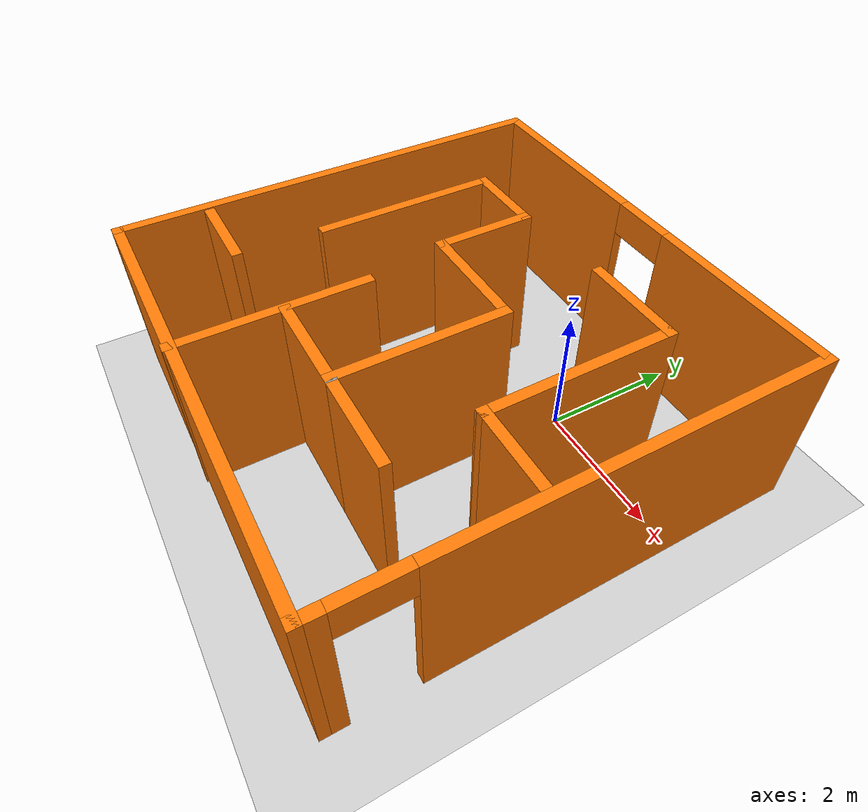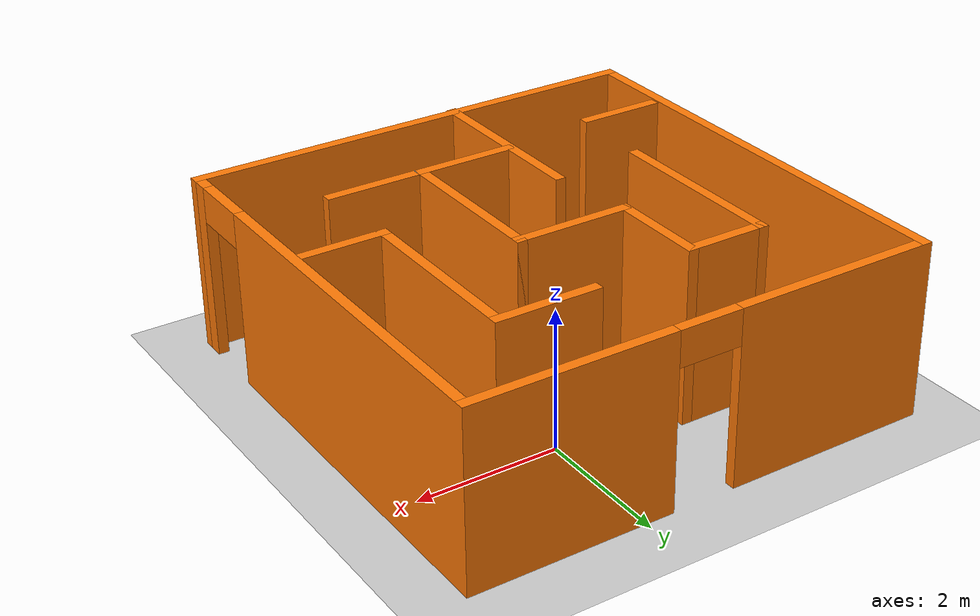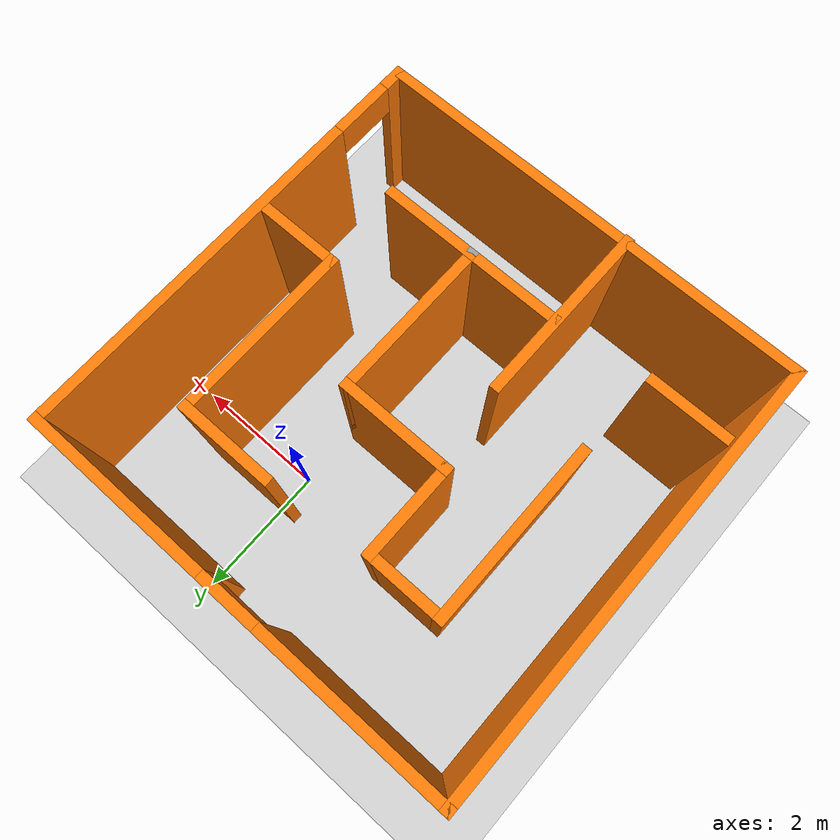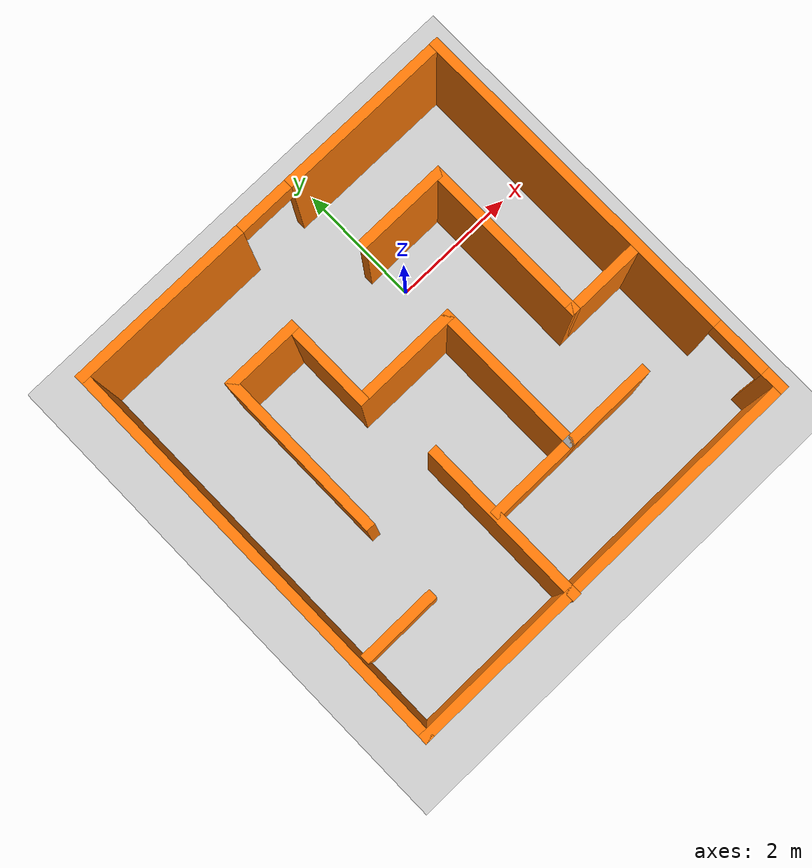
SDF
<sdf version="1.7">
 <world name="default">
  <light name="sun" type="directional">
   <pose>0 0 10 0 -0 0</pose>
   <diffuse>0.8 0.8 0.8 1</diffuse>
   <specular>0.2 0.2 0.2 1</specular>
   <attenuation>
    <range>1000</range>
    <constant>0.9</constant>
    <linear>0.01</linear>
    <quadratic>0.001</quadratic>
   </attenuation>
   <direction>-0.5 0.1 -0.9</direction>
   <spot><inner_angle>0</inner_angle><outer_angle>0</outer_angle><falloff>0</falloff></spot>
  </light>
  <model name="ground_plane">
   <static>1</static>
   <link name="link">
    <collision name="collision">
     <geometry><plane><normal>0 0 1</normal><size>100 100</size></plane></geometry>
     <surface>
      <contact><collide_bitmask>65535</collide_bitmask></contact>
      <friction><ode><mu>100</mu><mu2>50</mu2></ode></friction>
     </surface>
    </collision>
    <visual name="visual">
     <cast_shadows>0</cast_shadows>
     <geometry><plane><normal>0 0 1</normal><size>100 100</size></plane></geometry>
     <material>
      <script><uri>file://media/materials/scripts/gazebo.material</uri><name>Gazebo/Grey</name></script>
     </material>
    </visual>
   </link>
  </model>
  <gravity>0 0 -9.8</gravity>
  <magnetic_field>6e-06 2.3e-05 -4.2e-05</magnetic_field>
  <atmosphere type="adiabatic"/>
  <physics type="ode">
   <max_step_size>0.001</max_step_size>
   <real_time_factor>1</real_time_factor>
   <real_time_update_rate>1000</real_time_update_rate>
  </physics>
  <scene><ambient>0.4 0.4 0.4 1</ambient><background>0.7 0.7 0.7 1</background><shadows>1</shadows></scene>
  <audio><device>default</device></audio>
  <spherical_coordinates>
   <surface_model>EARTH_WGS84</surface_model>
   <latitude_deg>0</latitude_deg>
   <longitude_deg>0</longitude_deg>
   <elevation>0</elevation>
   <heading_deg>0</heading_deg>
  </spherical_coordinates>
  <model name="Maze_world">
   <pose>-0.892691 -1.48101 0 0 -0 0</pose>
   <link name="Wall_0">
    <pose>0 3.31136 0 0 -0 0</pose>
    <visual name="Wall_0_Visual_0">
     <pose>-1.89307 0 1.25 0 -0 0</pose>
     <geometry><box><size>2.96385 0.15 2.5</size></box></geometry>
     <material>
      <script><uri>file://media/materials/scripts/gazebo.material</uri><name>Gazebo/Grey</name></script>
      <ambient>0.996078 0.47451 0.0196078 1</ambient>
     </material>
     <meta><layer>0</layer></meta>
    </visual>
    <collision name="Wall_0_Collision_0">
     <geometry><box><size>2.96385 0.15 2.5</size></box></geometry>
     <pose>-1.89307 0 1.25 0 -0 0</pose>
    </collision>
    <visual name="Wall_0_Visual_1">
     <pose>1.93193 0 1.25 0 -0 0</pose>
     <geometry><box><size>2.88615 0.15 2.5</size></box></geometry>
     <material>
      <script><uri>file://media/materials/scripts/gazebo.material</uri><name>Gazebo/Grey</name></script>
      <ambient>0.996078 0.47451 0.0196078 1</ambient>
     </material>
     <meta><layer>0</layer></meta>
    </visual>
    <collision name="Wall_0_Collision_1">
     <geometry><box><size>2.88615 0.15 2.5</size></box></geometry>
     <pose>1.93193 0 1.25 0 -0 0</pose>
    </collision>
    <visual name="Wall_0_Visual_2">
     <pose>0.038853 0 2.25 0 -0 0</pose>
     <geometry><box><size>0.9 0.15 0.5</size></box></geometry>
     <material>
      <script><uri>file://media/materials/scripts/gazebo.material</uri><name>Gazebo/Grey</name></script>
      <ambient>0.996078 0.47451 0.0196078 1</ambient>
     </material>
     <meta><layer>0</layer></meta>
    </visual>
    <collision name="Wall_0_Collision_2">
     <geometry><box><size>0.9 0.15 0.5</size></box></geometry>
     <pose>0.038853 0 2.25 0 -0 0</pose>
    </collision>
   </link>
   <link name="Wall_1">
    <pose>3.3 0.011357 0 0 -0 -1.5708</pose>
    <visual name="Wall_1_Visual_0">
     <pose>-0.635975 0 1.25 0 -0 0</pose>
     <geometry><box><size>5.47805 0.15 2.5</size></box></geometry>
     <material>
      <script><uri>file://media/materials/scripts/gazebo.material</uri><name>Gazebo/Grey</name></script>
      <ambient>0.996078 0.47451 0.0196078 1</ambient>
     </material>
     <meta><layer>0</layer></meta>
    </visual>
    <collision name="Wall_1_Collision_0">
     <geometry><box><size>5.47805 0.15 2.5</size></box></geometry>
     <pose>-0.635975 0 1.25 0 -0 0</pose>
    </collision>
    <visual name="Wall_1_Visual_1">
     <pose>3.18902 0 1.25 0 -0 0</pose>
     <geometry><box><size>0.371951 0.15 2.5</size></box></geometry>
     <material>
      <script><uri>file://media/materials/scripts/gazebo.material</uri><name>Gazebo/Grey</name></script>
      <ambient>0.996078 0.47451 0.0196078 1</ambient>
     </material>
     <meta><layer>0</layer></meta>
    </visual>
    <collision name="Wall_1_Collision_1">
     <geometry><box><size>0.371951 0.15 2.5</size></box></geometry>
     <pose>3.18902 0 1.25 0 -0 0</pose>
    </collision>
    <visual name="Wall_1_Visual_2">
     <pose>2.55305 0 2.25 0 -0 0</pose>
     <geometry><box><size>0.9 0.15 0.5</size></box></geometry>
     <material>
      <script><uri>file://media/materials/scripts/gazebo.material</uri><name>Gazebo/Grey</name></script>
      <ambient>0.996078 0.47451 0.0196078 1</ambient>
     </material>
     <meta><layer>0</layer></meta>
    </visual>
    <collision name="Wall_1_Collision_2">
     <geometry><box><size>0.9 0.15 0.5</size></box></geometry>
     <pose>2.55305 0 2.25 0 -0 0</pose>
    </collision>
   </link>
   <link name="Wall_10">
    <collision name="Wall_10_Collision">
     <geometry><box><size>1.75 0.15 2.5</size></box></geometry>
     <pose>0 0 1.25 0 -0 0</pose>
    </collision>
    <visual name="Wall_10_Visual">
     <pose>0 0 1.25 0 -0 0</pose>
     <geometry><box><size>1.75 0.15 2.5</size></box></geometry>
     <material>
      <script><uri>file://media/materials/scripts/gazebo.material</uri><name>Gazebo/Grey</name></script>
      <ambient>0.996078 0.47451 0.0196078 1</ambient>
     </material>
     <meta><layer>0</layer></meta>
    </visual>
    <pose>-0.032277 0.498415 0 0 -0 0</pose>
   </link>
   <link name="Wall_11">
    <collision name="Wall_11_Collision">
     <geometry><box><size>2.5 0.15 2.5</size></box></geometry>
     <pose>0 0 1.25 0 -0 0</pose>
    </collision>
    <visual name="Wall_11_Visual">
     <pose>0 0 1.25 0 -0 0</pose>
     <geometry><box><size>2.5 0.15 2.5</size></box></geometry>
     <material>
      <script><uri>file://media/materials/scripts/gazebo.material</uri><name>Gazebo/Grey</name></script>
      <ambient>0.996078 0.47451 0.0196078 1</ambient>
     </material>
     <meta><layer>0</layer></meta>
    </visual>
    <pose>0.767723 -0.676585 0 0 -0 -1.5708</pose>
   </link>
   <link name="Wall_12">
    <collision name="Wall_12_Collision">
     <geometry><box><size>0.15 0.15 2.5</size></box></geometry>
     <pose>0 0 1.25 0 -0 0</pose>
    </collision>
    <visual name="Wall_12_Visual">
     <pose>0 0 1.25 0 -0 0</pose>
     <geometry><box><size>0.15 0.15 2.5</size></box></geometry>
     <material>
      <script><uri>file://media/materials/scripts/gazebo.material</uri><name>Gazebo/Grey</name></script>
      <ambient>1 1 1 1</ambient>
     </material>
     <meta><layer>0</layer></meta>
    </visual>
    <pose>0.767723 -1.85159 0 0 -0 0</pose>
   </link>
   <link name="Wall_13">
    <collision name="Wall_13_Collision">
     <geometry><box><size>1.5 0.15 2.5</size></box></geometry>
     <pose>0 0 1.25 0 -0 0</pose>
    </collision>
    <visual name="Wall_13_Visual">
     <pose>0 0 1.25 0 -0 0</pose>
     <geometry><box><size>1.5 0.15 2.5</size></box></geometry>
     <material>
      <script><uri>file://media/materials/scripts/gazebo.material</uri><name>Gazebo/Grey</name></script>
      <ambient>0.996078 0.47451 0.0196078 1</ambient>
     </material>
     <meta><layer>0</layer></meta>
    </visual>
    <pose>0.092723 -1.85159 0 0 -0 3.14159</pose>
   </link>
   <link name="Wall_15">
    <collision name="Wall_15_Collision">
     <geometry><box><size>1.5 0.15 2.5</size></box></geometry>
     <pose>0 0 1.25 0 -0 0</pose>
    </collision>
    <visual name="Wall_15_Visual">
     <pose>0 0 1.25 0 -0 0</pose>
     <geometry><box><size>1.5 0.15 2.5</size></box></geometry>
     <material>
      <script><uri>file://media/materials/scripts/gazebo.material</uri><name>Gazebo/Grey</name></script>
      <ambient>0.996078 0.47451 0.0196078 1</ambient>
     </material>
     <meta><layer>0</layer></meta>
    </visual>
    <pose>1.44272 -1.85159 0 0 -0 0</pose>
   </link>
   <link name="Wall_17">
    <collision name="Wall_17_Collision">
     <geometry><box><size>2.75 0.15 2.5</size></box></geometry>
     <pose>0 0 1.25 0 -0 0</pose>
    </collision>
    <visual name="Wall_17_Visual">
     <pose>0 0 1.25 0 -0 0</pose>
     <geometry><box><size>2.75 0.15 2.5</size></box></geometry>
     <material>
      <script><uri>file://media/materials/scripts/gazebo.material</uri><name>Gazebo/Grey</name></script>
      <ambient>0.996078 0.47451 0.0196078 1</ambient>
     </material>
     <meta><layer>0</layer></meta>
    </visual>
    <pose>-0.624895 -2.01136 0 0 -0 -1.5708</pose>
   </link>
   <link name="Wall_19">
    <collision name="Wall_19_Collision">
     <geometry><box><size>1.5 0.15 2.5</size></box></geometry>
     <pose>0 0 1.25 0 -0 0</pose>
    </collision>
    <visual name="Wall_19_Visual">
     <pose>0 0 1.25 0 -0 0</pose>
     <geometry><box><size>1.5 0.15 2.5</size></box></geometry>
     <material>
      <script><uri>file://media/materials/scripts/gazebo.material</uri><name>Gazebo/Grey</name></script>
      <ambient>0.996078 0.47451 0.0196078 1</ambient>
     </material>
     <meta><layer>0</layer></meta>
    </visual>
    <pose>1.3776 2.00398 0 0 -0 0</pose>
   </link>
   <link name="Wall_2">
    <collision name="Wall_2_Collision">
     <geometry><box><size>6.75 0.15 2.5</size></box></geometry>
     <pose>0 0 1.25 0 -0 0</pose>
    </collision>
    <visual name="Wall_2_Visual">
     <pose>0 0 1.25 0 -0 0</pose>
     <geometry><box><size>6.75 0.15 2.5</size></box></geometry>
     <material>
      <script><uri>file://media/materials/scripts/gazebo.material</uri><name>Gazebo/Grey</name></script>
      <ambient>0.996078 0.47451 0.0196078 1</ambient>
     </material>
     <meta><layer>0</layer></meta>
    </visual>
    <pose>0 -3.28864 0 0 -0 3.14159</pose>
   </link>
   <link name="Wall_20">
    <collision name="Wall_20_Collision">
     <geometry><box><size>2.75 0.15 2.5</size></box></geometry>
     <pose>0 0 1.25 0 -0 0</pose>
    </collision>
    <visual name="Wall_20_Visual">
     <pose>0 0 1.25 0 -0 0</pose>
     <geometry><box><size>2.75 0.15 2.5</size></box></geometry>
     <material>
      <script><uri>file://media/materials/scripts/gazebo.material</uri><name>Gazebo/Grey</name></script>
      <ambient>0.996078 0.47451 0.0196078 1</ambient>
     </material>
     <meta><layer>0</layer></meta>
    </visual>
    <pose>2.0526 0.703975 0 0 -0 -1.5708</pose>
   </link>
   <link name="Wall_21">
    <collision name="Wall_21_Collision">
     <geometry><box><size>1.25 0.15 2.5</size></box></geometry>
     <pose>0 0 1.25 0 -0 0</pose>
    </collision>
    <visual name="Wall_21_Visual">
     <pose>0 0 1.25 0 -0 0</pose>
     <geometry><box><size>1.25 0.15 2.5</size></box></geometry>
     <material>
      <script><uri>file://media/materials/scripts/gazebo.material</uri><name>Gazebo/Grey</name></script>
      <ambient>0.996078 0.47451 0.0196078 1</ambient>
     </material>
     <meta><layer>0</layer></meta>
    </visual>
    <pose>2.6026 -0.596025 0 0 -0 0</pose>
   </link>
   <link name="Wall_3">
    <collision name="Wall_3_Collision">
     <geometry><box><size>6.75 0.15 2.5</size></box></geometry>
     <pose>0 0 1.25 0 -0 0</pose>
    </collision>
    <visual name="Wall_3_Visual">
     <pose>0 0 1.25 0 -0 0</pose>
     <geometry><box><size>6.75 0.15 2.5</size></box></geometry>
     <material>
      <script><uri>file://media/materials/scripts/gazebo.material</uri><name>Gazebo/Grey</name></script>
      <ambient>0.996078 0.47451 0.0196078 1</ambient>
     </material>
     <meta><layer>0</layer></meta>
    </visual>
    <pose>-3.3 0.011357 0 0 -0 1.5708</pose>
   </link>
   <link name="Wall_5">
    <collision name="Wall_5_Collision">
     <geometry><box><size>1.25 0.15 2.5</size></box></geometry>
     <pose>0 0 1.25 0 -0 0</pose>
    </collision>
    <visual name="Wall_5_Visual">
     <pose>0 0 1.25 0 -0 0</pose>
     <geometry><box><size>1.25 0.15 2.5</size></box></geometry>
     <material>
      <script><uri>file://media/materials/scripts/gazebo.material</uri><name>Gazebo/Grey</name></script>
      <ambient>0.996078 0.47451 0.0196078 1</ambient>
     </material>
     <meta><layer>0</layer></meta>
    </visual>
    <pose>-2.56898 -2.01874 0 0 -0 0</pose>
   </link>
   <link name="Wall_7">
    <collision name="Wall_7_Collision">
     <geometry><box><size>2.75 0.15 2.5</size></box></geometry>
     <pose>0 0 1.25 0 -0 0</pose>
    </collision>
    <visual name="Wall_7_Visual">
     <pose>0 0 1.25 0 -0 0</pose>
     <geometry><box><size>2.75 0.15 2.5</size></box></geometry>
     <material>
      <script><uri>file://media/materials/scripts/gazebo.material</uri><name>Gazebo/Grey</name></script>
      <ambient>0.996078 0.47451 0.0196078 1</ambient>
     </material>
     <meta><layer>0</layer></meta>
    </visual>
    <pose>-1.93228 0.548415 0 0 -0 1.5708</pose>
   </link>
   <link name="Wall_8">
    <collision name="Wall_8_Collision">
     <geometry><box><size>1.25 0.15 2.5</size></box></geometry>
     <pose>0 0 1.25 0 -0 0</pose>
    </collision>
    <visual name="Wall_8_Visual">
     <pose>0 0 1.25 0 -0 0</pose>
     <geometry><box><size>1.25 0.15 2.5</size></box></geometry>
     <material>
      <script><uri>file://media/materials/scripts/gazebo.material</uri><name>Gazebo/Grey</name></script>
      <ambient>0.996078 0.47451 0.0196078 1</ambient>
     </material>
     <meta><layer>0</layer></meta>
    </visual>
    <pose>-1.38228 1.84841 0 0 -0 0</pose>
   </link>
   <link name="Wall_9">
    <collision name="Wall_9_Collision">
     <geometry><box><size>1.5 0.15 2.5</size></box></geometry>
     <pose>0 0 1.25 0 -0 0</pose>
    </collision>
    <visual name="Wall_9_Visual">
     <pose>0 0 1.25 0 -0 0</pose>
     <geometry><box><size>1.5 0.15 2.5</size></box></geometry>
     <material>
      <script><uri>file://media/materials/scripts/gazebo.material</uri><name>Gazebo/Grey</name></script>
      <ambient>0.996078 0.47451 0.0196078 1</ambient>
     </material>
     <meta><layer>0</layer></meta>
    </visual>
    <pose>-0.832277 1.17342 0 0 -0 -1.5708</pose>
   </link>
   <static>1</static>
  </model>
 </world>
</sdf>
